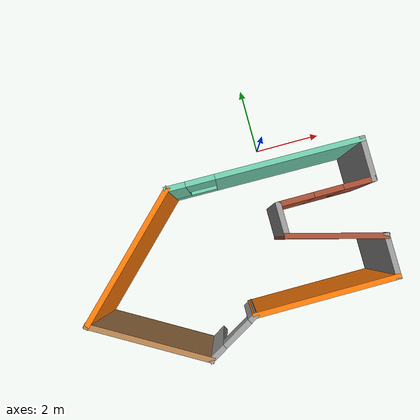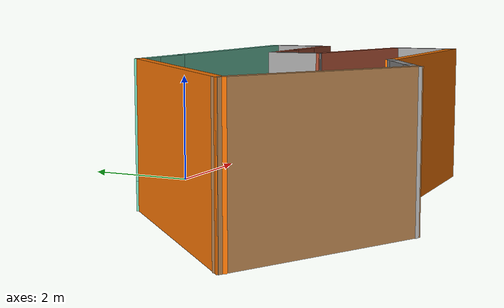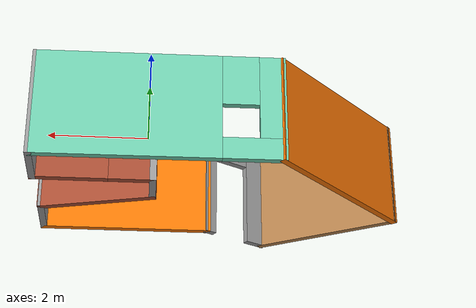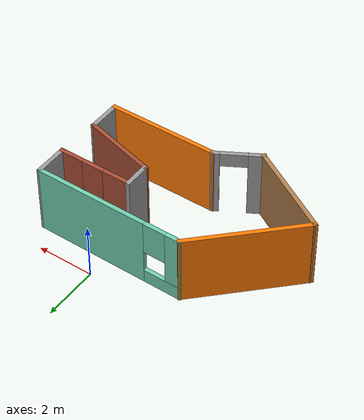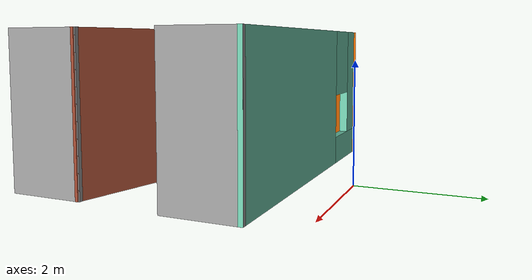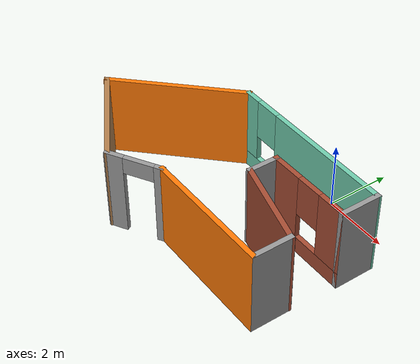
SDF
<?xml version='1.0'?>
<sdf version='1.6'>
  <model name='home_service'>
    <pose frame=''>-1.65203 -3.06826 0 0 -0 0</pose>
    <link name='Wall_0'>
      <collision name='Wall_0_Collision'>
        <geometry>
          <box>
            <size>4.25 0.15 2.5</size>
          </box>
        </geometry>
        <pose frame=''>0 0 1.25 0 -0 0</pose>
      </collision>
      <visual name='Wall_0_Visual'>
        <pose frame=''>0 0 1.25 0 -0 0</pose>
        <geometry>
          <box>
            <size>4.25 0.15 2.5</size>
          </box>
        </geometry>
        <material>
          <script>
            <uri>file://media/materials/scripts/gazebo.material</uri>
            <name>Gazebo/Grey</name>
          </script>
          <ambient>0.996078 0.47451 0.0196078 1</ambient>
        </material>
        <meta>
          <layer>0</layer>
        </meta>
      </visual>
      <pose frame=''>-2.64797 0.835693 0 0 0 -2.35619</pose>
    </link>
    <link name='Wall_1'>
      <collision name='Wall_1_Collision'>
        <geometry>
          <box>
            <size>3.5 0.15 2.5</size>
          </box>
        </geometry>
        <pose frame=''>0 0 1.25 0 -0 0</pose>
      </collision>
      <visual name='Wall_1_Visual'>
        <pose frame=''>0 0 1.25 0 -0 0</pose>
        <geometry>
          <box>
            <size>3.5 0.15 2.5</size>
          </box>
        </geometry>
        <material>
          <script>
            <uri>file://media/materials/scripts/gazebo.material</uri>
            <name>Gazebo/Wood</name>
          </script>
          <ambient>1 1 1 1</ambient>
        </material>
        <meta>
          <layer>0</layer>
        </meta>
      </visual>
      <pose frame=''>-2.64694 -1.45138 0 0 0 -0.523599</pose>
    </link>
    <link name='Wall_2'>
      <pose frame=''>-0.503529 -1.88888 0 0 -0 0.523599</pose>
      <visual name='Wall_2_Visual_0'>
        <pose frame=''>-0.595327 0 1.25 0 -0 0</pose>
        <geometry>
          <box>
            <size>0.559347 0.15 2.5</size>
          </box>
        </geometry>
        <material>
          <script>
            <uri>file://media/materials/scripts/gazebo.material</uri>
            <name>Gazebo/Grey</name>
          </script>
          <ambient>1 1 1 1</ambient>
        </material>
        <meta>
          <layer>0</layer>
        </meta>
      </visual>
      <collision name='Wall_2_Collision_0'>
        <geometry>
          <box>
            <size>0.559347 0.15 2.5</size>
          </box>
        </geometry>
        <pose frame=''>-0.595327 0 1.25 0 -0 0</pose>
      </collision>
      <visual name='Wall_2_Visual_1'>
        <pose frame=''>0.729673 0 1.25 0 -0 0</pose>
        <geometry>
          <box>
            <size>0.290653 0.15 2.5</size>
          </box>
        </geometry>
        <material>
          <script>
            <uri>file://media/materials/scripts/gazebo.material</uri>
            <name>Gazebo/Grey</name>
          </script>
          <ambient>1 1 1 1</ambient>
        </material>
        <meta>
          <layer>0</layer>
        </meta>
      </visual>
      <collision name='Wall_2_Collision_1'>
        <geometry>
          <box>
            <size>0.290653 0.15 2.5</size>
          </box>
        </geometry>
        <pose frame=''>0.729673 0 1.25 0 -0 0</pose>
      </collision>
      <visual name='Wall_2_Visual_2'>
        <pose frame=''>0.134347 0 2.25 0 -0 0</pose>
        <geometry>
          <box>
            <size>0.9 0.15 0.5</size>
          </box>
        </geometry>
        <material>
          <script>
            <uri>file://media/materials/scripts/gazebo.material</uri>
            <name>Gazebo/Grey</name>
          </script>
          <ambient>1 1 1 1</ambient>
        </material>
        <meta>
          <layer>0</layer>
        </meta>
      </visual>
      <collision name='Wall_2_Collision_2'>
        <geometry>
          <box>
            <size>0.9 0.15 0.5</size>
          </box>
        </geometry>
        <pose frame=''>0.134347 0 2.25 0 -0 0</pose>
      </collision>
    </link>
    <link name='Wall_3'>
      <collision name='Wall_3_Collision'>
        <geometry>
          <box>
            <size>4 0.15 2.5</size>
          </box>
        </geometry>
        <pose frame=''>0 0 1.25 0 -0 0</pose>
      </collision>
      <visual name='Wall_3_Visual'>
        <pose frame=''>0 0 1.25 0 -0 0</pose>
        <geometry>
          <box>
            <size>4 0.15 2.5</size>
          </box>
        </geometry>
        <material>
          <script>
            <uri>file://media/materials/scripts/gazebo.material</uri>
            <name>Gazebo/Grey</name>
          </script>
          <ambient>0.996078 0.47451 0.0196078 1</ambient>
        </material>
        <meta>
          <layer>0</layer>
        </meta>
      </visual>
      <pose frame=''>2.11429 -1.48888 0 0 -0 0</pose>
    </link>
    <link name='Wall_4'>
      <collision name='Wall_4_Collision'>
        <geometry>
          <box>
            <size>1.25 0.15 2.5</size>
          </box>
        </geometry>
        <pose frame=''>0 0 1.25 0 -0 0</pose>
      </collision>
      <visual name='Wall_4_Visual'>
        <pose frame=''>0 0 1.25 0 -0 0</pose>
        <geometry>
          <box>
            <size>1.25 0.15 2.5</size>
          </box>
        </geometry>
        <material>
          <script>
            <uri>file://media/materials/scripts/gazebo.material</uri>
            <name>Gazebo/Grey</name>
          </script>
          <ambient>1 1 1 1</ambient>
        </material>
        <meta>
          <layer>0</layer>
        </meta>
      </visual>
      <pose frame=''>4.03929 -0.938876 0 0 -0 1.5708</pose>
    </link>
    <link name='Wall_5'>
      <collision name='Wall_5_Collision'>
        <geometry>
          <box>
            <size>2.75 0.15 2.5</size>
          </box>
        </geometry>
        <pose frame=''>0 0 1.25 0 -0 0</pose>
      </collision>
      <visual name='Wall_5_Visual'>
        <pose frame=''>0 0 1.25 0 -0 0</pose>
        <geometry>
          <box>
            <size>2.75 0.15 2.5</size>
          </box>
        </geometry>
        <material>
          <script>
            <uri>file://media/materials/scripts/gazebo.material</uri>
            <name>Gazebo/Bricks</name>
          </script>
          <ambient>1 1 1 1</ambient>
        </material>
        <meta>
          <layer>0</layer>
        </meta>
      </visual>
      <pose frame=''>2.78359 -0.052411 0 0 -0 2.87979</pose>
    </link>
    <link name='Wall_6'>
      <collision name='Wall_6_Collision'>
        <geometry>
          <box>
            <size>1 0.15 2.5</size>
          </box>
        </geometry>
        <pose frame=''>0 0 1.25 0 -0 0</pose>
      </collision>
      <visual name='Wall_6_Visual'>
        <pose frame=''>0 0 1.25 0 -0 0</pose>
        <geometry>
          <box>
            <size>1 0.15 2.5</size>
          </box>
        </geometry>
        <material>
          <script>
            <uri>file://media/materials/scripts/gazebo.material</uri>
            <name>Gazebo/Grey</name>
          </script>
          <ambient>1 1 1 1</ambient>
        </material>
        <meta>
          <layer>0</layer>
        </meta>
      </visual>
      <pose frame=''>1.52788 0.709054 0 0 -0 1.5708</pose>
    </link>
    <link name='Wall_7'>
      <pose frame=''>2.82788 1.13405 0 0 -0 0</pose>
      <visual name='Wall_7_Visual_0'>
        <pose frame=''>-0.852425 0 1.25 0 -0 0</pose>
        <geometry>
          <box>
            <size>1.04515 0.15 2.5</size>
          </box>
        </geometry>
        <material>
          <script>
            <uri>file://media/materials/scripts/gazebo.material</uri>
            <name>Gazebo/Bricks</name>
          </script>
          <ambient>1 1 1 1</ambient>
        </material>
        <meta>
          <layer>0</layer>
        </meta>
      </visual>
      <collision name='Wall_7_Collision_0'>
        <geometry>
          <box>
            <size>1.04515 0.15 2.5</size>
          </box>
        </geometry>
        <pose frame=''>-0.852425 0 1.25 0 -0 0</pose>
      </collision>
      <visual name='Wall_7_Visual_1'>
        <pose frame=''>0.522575 0 0.25 0 -0 0</pose>
        <geometry>
          <box>
            <size>1.70485 0.15 0.5</size>
          </box>
        </geometry>
        <material>
          <script>
            <uri>file://media/materials/scripts/gazebo.material</uri>
            <name>Gazebo/Bricks</name>
          </script>
          <ambient>1 1 1 1</ambient>
        </material>
        <meta>
          <layer>0</layer>
        </meta>
      </visual>
      <collision name='Wall_7_Collision_1'>
        <geometry>
          <box>
            <size>1.70485 0.15 0.5</size>
          </box>
        </geometry>
        <pose frame=''>0.522575 0 0.25 0 -0 0</pose>
      </collision>
      <visual name='Wall_7_Visual_2'>
        <pose frame=''>0.922575 0 1.5 0 -0 0</pose>
        <geometry>
          <box>
            <size>0.90485 0.15 2</size>
          </box>
        </geometry>
        <material>
          <script>
            <uri>file://media/materials/scripts/gazebo.material</uri>
            <name>Gazebo/Bricks</name>
          </script>
          <ambient>1 1 1 1</ambient>
        </material>
        <meta>
          <layer>0</layer>
        </meta>
      </visual>
      <collision name='Wall_7_Collision_2'>
        <geometry>
          <box>
            <size>0.90485 0.15 2</size>
          </box>
        </geometry>
        <pose frame=''>0.922575 0 1.5 0 -0 0</pose>
      </collision>
      <visual name='Wall_7_Visual_3'>
        <pose frame=''>0.07015 0 1.9 0 -0 0</pose>
        <geometry>
          <box>
            <size>0.8 0.15 1.2</size>
          </box>
        </geometry>
        <material>
          <script>
            <uri>file://media/materials/scripts/gazebo.material</uri>
            <name>Gazebo/Bricks</name>
          </script>
          <ambient>1 1 1 1</ambient>
        </material>
        <meta>
          <layer>0</layer>
        </meta>
      </visual>
      <collision name='Wall_7_Collision_3'>
        <geometry>
          <box>
            <size>0.8 0.15 1.2</size>
          </box>
        </geometry>
        <pose frame=''>0.07015 0 1.9 0 -0 0</pose>
      </collision>
    </link>
    <link name='Wall_8'>
      <collision name='Wall_8_Collision'>
        <geometry>
          <box>
            <size>1.25 0.15 2.5</size>
          </box>
        </geometry>
        <pose frame=''>0 0 1.25 0 -0 0</pose>
      </collision>
      <visual name='Wall_8_Visual'>
        <pose frame=''>0 0 1.25 0 -0 0</pose>
        <geometry>
          <box>
            <size>1.25 0.15 2.5</size>
          </box>
        </geometry>
        <material>
          <script>
            <uri>file://media/materials/scripts/gazebo.material</uri>
            <name>Gazebo/Grey</name>
          </script>
          <ambient>1 1 1 1</ambient>
        </material>
        <meta>
          <layer>0</layer>
        </meta>
      </visual>
      <pose frame=''>4.12788 1.68405 0 0 -0 1.5708</pose>
    </link>
    <link name='Wall_9'>
      <pose frame=''>1.46474 2.25966 0 0 -0 3.13198</pose>
      <visual name='Wall_9_Visual_0'>
        <pose frame=''>-0.68981 0 1.25 0 -0 0</pose>
        <geometry>
          <box>
            <size>4.09691 0.15 2.5</size>
          </box>
        </geometry>
        <material>
          <script>
            <uri>file://media/materials/scripts/gazebo.material</uri>
            <name>Gazebo/Grey</name>
          </script>
          <ambient>0.435294 0.796078 0.67451 1</ambient>
        </material>
        <meta>
          <layer>0</layer>
        </meta>
      </visual>
      <collision name='Wall_9_Collision_0'>
        <geometry>
          <box>
            <size>4.09691 0.15 2.5</size>
          </box>
        </geometry>
        <pose frame=''>-0.68981 0 1.25 0 -0 0</pose>
      </collision>
      <visual name='Wall_9_Visual_1'>
        <pose frame=''>2.04845 0 0.25 0 -0 0</pose>
        <geometry>
          <box>
            <size>1.37962 0.15 0.5</size>
          </box>
        </geometry>
        <material>
          <script>
            <uri>file://media/materials/scripts/gazebo.material</uri>
            <name>Gazebo/Grey</name>
          </script>
          <ambient>0.435294 0.796078 0.67451 1</ambient>
        </material>
        <meta>
          <layer>0</layer>
        </meta>
      </visual>
      <collision name='Wall_9_Collision_1'>
        <geometry>
          <box>
            <size>1.37962 0.15 0.5</size>
          </box>
        </geometry>
        <pose frame=''>2.04845 0 0.25 0 -0 0</pose>
      </collision>
      <visual name='Wall_9_Visual_2'>
        <pose frame=''>2.44845 0 1.5 0 -0 0</pose>
        <geometry>
          <box>
            <size>0.579621 0.15 2</size>
          </box>
        </geometry>
        <material>
          <script>
            <uri>file://media/materials/scripts/gazebo.material</uri>
            <name>Gazebo/Grey</name>
          </script>
          <ambient>0.435294 0.796078 0.67451 1</ambient>
        </material>
        <meta>
          <layer>0</layer>
        </meta>
      </visual>
      <collision name='Wall_9_Collision_2'>
        <geometry>
          <box>
            <size>0.579621 0.15 2</size>
          </box>
        </geometry>
        <pose frame=''>2.44845 0 1.5 0 -0 0</pose>
      </collision>
      <visual name='Wall_9_Visual_3'>
        <pose frame=''>1.75864 0 1.9 0 -0 0</pose>
        <geometry>
          <box>
            <size>0.8 0.15 1.2</size>
          </box>
        </geometry>
        <material>
          <script>
            <uri>file://media/materials/scripts/gazebo.material</uri>
            <name>Gazebo/Grey</name>
          </script>
          <ambient>0.435294 0.796078 0.67451 1</ambient>
        </material>
        <meta>
          <layer>0</layer>
        </meta>
      </visual>
      <collision name='Wall_9_Collision_3'>
        <geometry>
          <box>
            <size>0.8 0.15 1.2</size>
          </box>
        </geometry>
        <pose frame=''>1.75864 0 1.9 0 -0 0</pose>
      </collision>
    </link>
    <static>1</static>
  </model>
</sdf>
